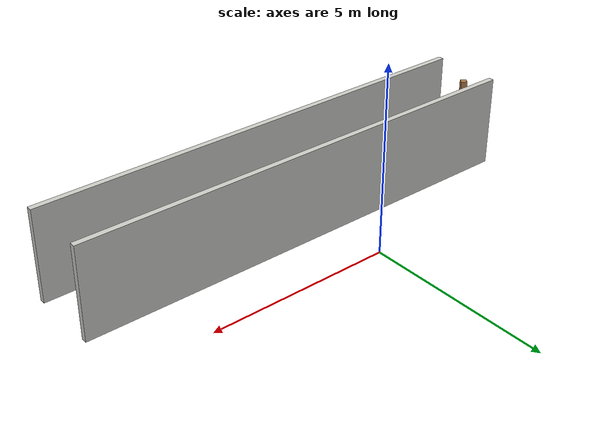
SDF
<?xml version='1.0'?>
<sdf version='1.6'>
  <model name='pole_2m'>
    <pose frame=''>0.952783 -2.485 0 0 -0 0</pose>
    <link name='Wall_0'>
      <collision name='Wall_0_Collision'>
        <geometry>
          <box>
            <size>12.75 0.15 2.5</size>
          </box>
        </geometry>
        <pose frame=''>0 0 1.25 0 -0 0</pose>
      </collision>
      <visual name='Wall_0_Visual'>
        <pose frame=''>0 0 1.25 0 -0 0</pose>
        <geometry>
          <box>
            <size>12.75 0.15 2.5</size>
          </box>
        </geometry>
        <material>
          <script>
            <uri>file://media/materials/scripts/gazebo.material</uri>
            <name>Gazebo/CeilingTiled</name>
          </script>
          <ambient>1 1 1 1</ambient>
        </material>
        <meta>
          <layer>0</layer>
        </meta>
      </visual>
      <pose frame=''>-0.007783 0.925 0 0 -0 0</pose>
    </link>
    <link name='Wall_2'>
      <collision name='Wall_2_Collision'>
        <geometry>
          <box>
            <size>12.75 0.15 2.5</size>
          </box>
        </geometry>
        <pose frame=''>0 0 1.25 0 -0 0</pose>
      </collision>
      <visual name='Wall_2_Visual'>
        <pose frame=''>0 0 1.25 0 -0 0</pose>
        <geometry>
          <box>
            <size>12.75 0.15 2.5</size>
          </box>
        </geometry>
        <material>
          <script>
            <uri>file://media/materials/scripts/gazebo.material</uri>
            <name>Gazebo/CeilingTiled</name>
          </script>
          <ambient>1 1 1 1</ambient>
        </material>
        <meta>
          <layer>0</layer>
        </meta>
      </visual>
      <pose frame=''>0.007783 -0.925 0 0 -0 3.14159</pose>
    </link>
    <link name='Wall_6'>
      <collision name='Wall_6_Collision'>
        <geometry>
          <box>
            <size>0.16 0.15 2.5</size>
          </box>
        </geometry>
        <pose frame=''>0 0 1.25 0 -0 0</pose>
      </collision>
      <visual name='Wall_6_Visual'>
        <pose frame=''>0 0 1.25 0 -0 0</pose>
        <geometry>
          <box>
            <size>0.16 0.15 2.5</size>
          </box>
        </geometry>
        <material>
          <script>
            <uri>file://media/materials/scripts/gazebo.material</uri>
            <name>Gazebo/Wood</name>
          </script>
          <ambient>1 1 1 1</ambient>
        </material>
        <meta>
          <layer>0</layer>
        </meta>
      </visual>
      <pose frame=''>-5.71878 0.5395 0 0 -0 -0.558599</pose>
    </link>
    <static>1</static>
  </model>
</sdf>
